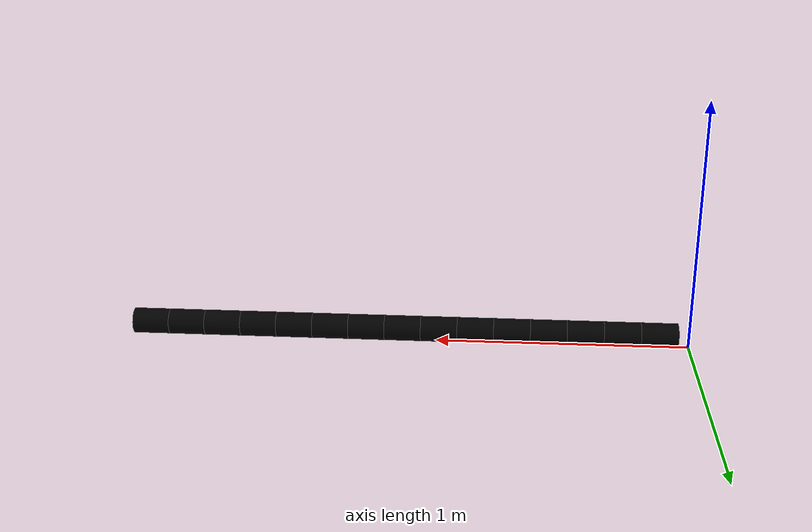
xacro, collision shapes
<?xml version="1.0" ?>
<robot name="REU_snake" xmlns:xacro="http://ros.org/wiki/xacro">
	<xacro:include filename="module.xacro" />
	<xacro:arg name="number_of_modules" default="14"/>
	<xacro:property name="module_number" value="$(arg number_of_modules)" />

	<link name="kdl_dummy_root"/>
	<joint name="kdl_dummy_root_to_module_0" type="fixed">
		<parent link="kdl_dummy_root"/>
		<child link="module_0"/>
		<origin rpy="0 0 0" xyz="0. 0 0.05"/>
	</joint>

	  <xacro:macro name="loop" params="module_count">
	  <xacro:module module_num="${module_number - module_count - 1}" />
		<xacro:if value="${module_count}">
		   <xacro:loop module_count="${module_count-1}" />
		</xacro:if>
	  </xacro:macro>

	<xacro:loop module_count="${module_number-1}" />

	<link name="module_${module_number}">
		<visual>
			<origin rpy="0 0 0" xyz="0 0 0"/>
			<geometry>
				<mesh filename="package://snakelib_description/RSNAKE_snake/meshes/R8_16_link.stl" scale="0.001 0.001 0.001"/>
			</geometry>
			<material name="black">
        			<color rgba="0 0 0 0.9"/>
      			</material>
		</visual>
		<collision>
			<origin rpy="0 1.57 0" xyz="0.118 0 0"/>
			<geometry>
				<cylinder length="0.1450" radius="0.05"/>
			</geometry>
		</collision>
		<inertial>
			<mass value="1.072"/>
			<inertia ixx="0.0104" ixy="0.0" ixz="0.0" iyy="0.0104" iyz="0.0" izz="0.0104"/>
		</inertial>
	</link>
</robot>

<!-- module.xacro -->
<robot xmlns:xacro="http://www.ros.org/wiki/xacro" name="ReU_module">
<xacro:macro name="module" params="module_num">
<xacro:property name="next_module_num" value="${module_num+1}" />
	<link name="module_${module_num}">
		<visual>
			<origin rpy="0 0 0" xyz="0 0 0"/>
			<geometry>
				<mesh filename="package://snakelib_description/RSNAKE_snake/meshes/R8_16_link.stl" scale="0.001 0.001 0.001"/>
			</geometry>
			<material name="black">
        			<color rgba="0 0 0 0.9"/>
      			</material>
		</visual>
		<collision>
			<origin rpy="0 1.57 0" xyz="0.118 0 0"/>
			<geometry>
				<cylinder length="0.1450" radius="0.05"/>
			</geometry>
		</collision>
		<inertial>
			<mass value="1.072"/>
			<inertia ixx="0.0104" ixy="0.0" ixz="0.0" iyy="0.0104" iyz="0.0" izz="0.0104"/>
		</inertial>
	</link>

	<joint name="module_${module_num}_to_${next_module_num}" type="revolute">
		<parent link="module_${module_num}"/>
		<child link="module_${next_module_num}"/>
		<axis xyz="0 0 1"/>
		<origin rpy="1.57 0 0" xyz="0.145 0 0"/>
		<limit effort="16.0" lower="-1.57" upper="1.57" velocity="0.25"/>
	</joint>
</xacro:macro>
</robot>
